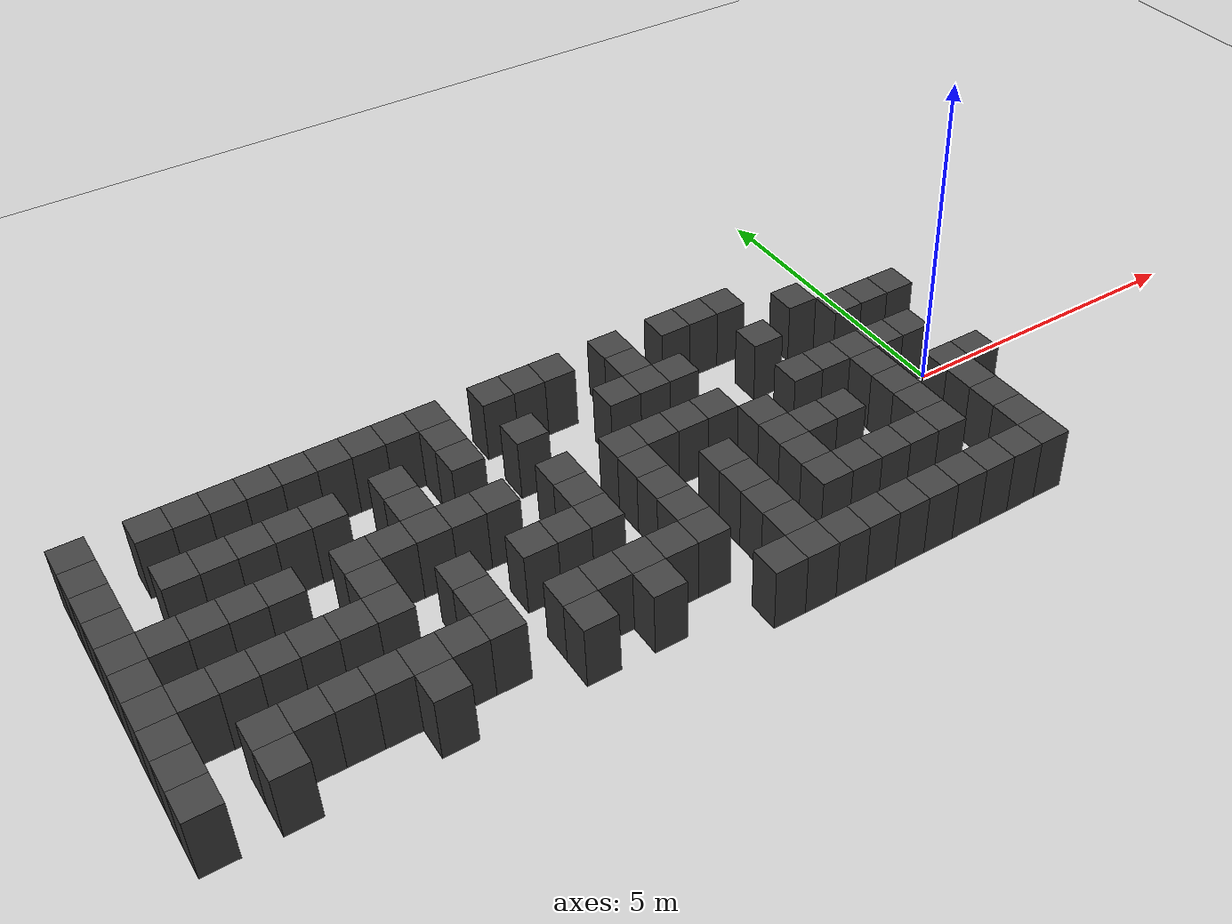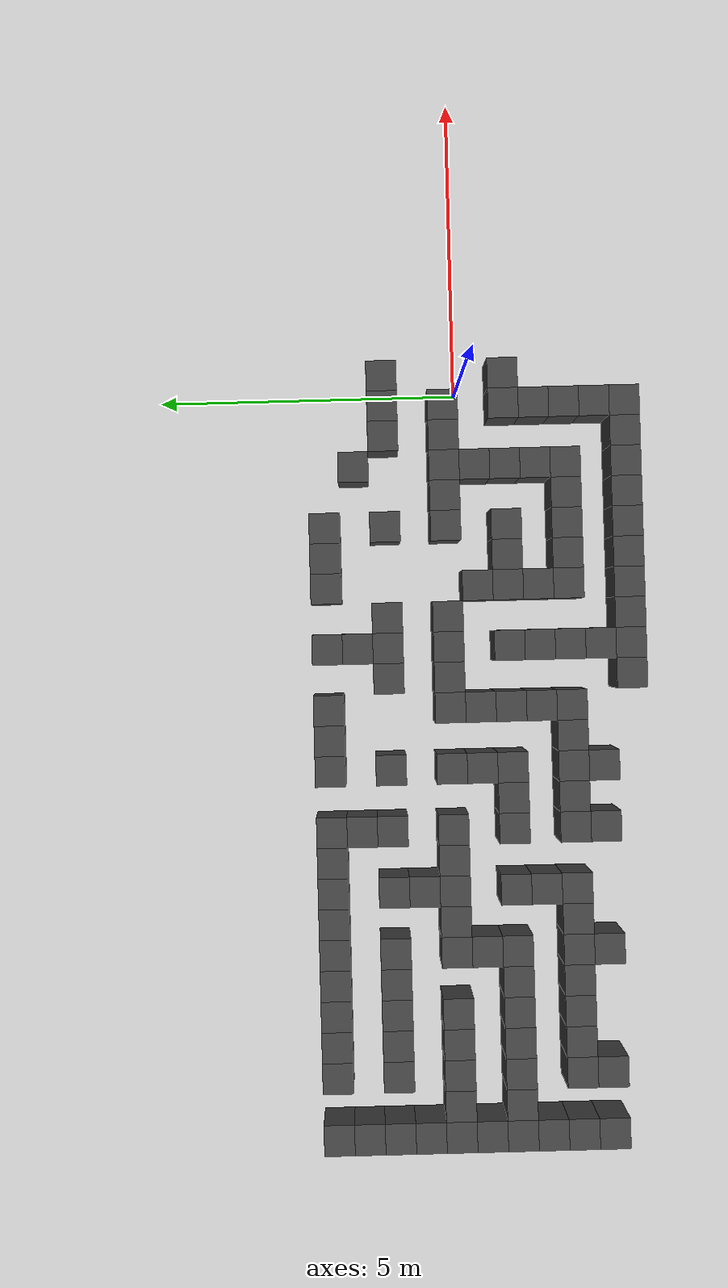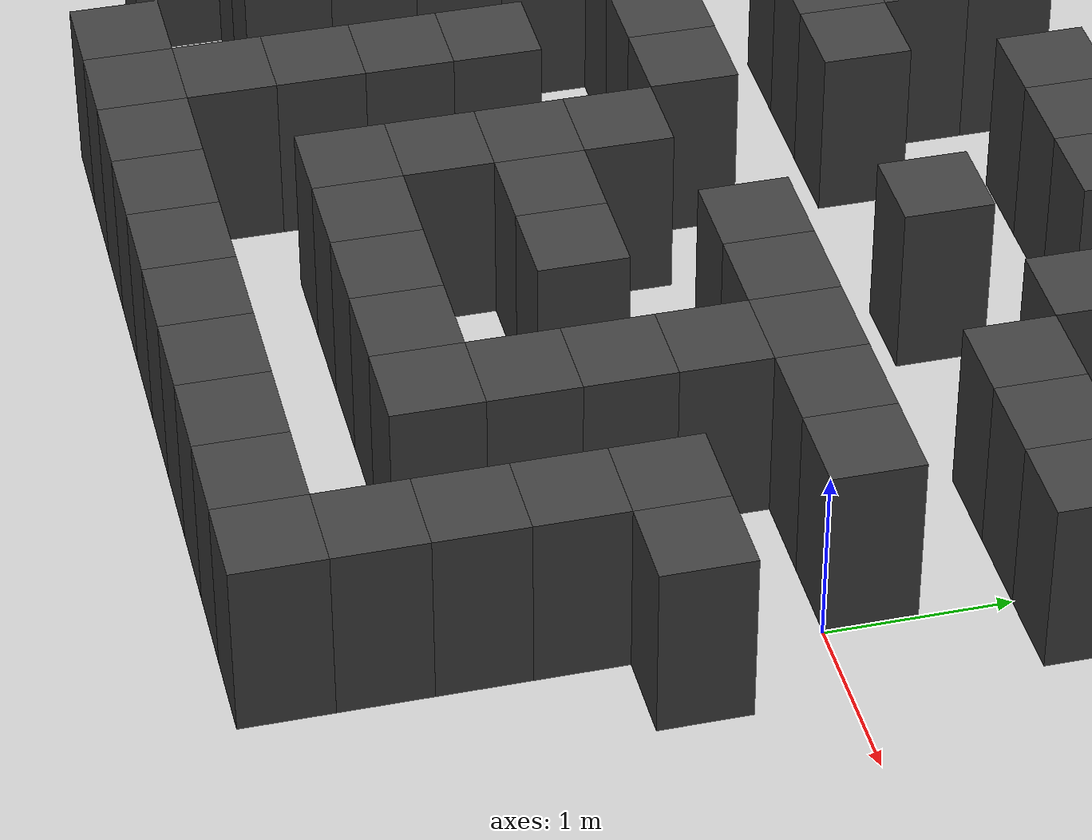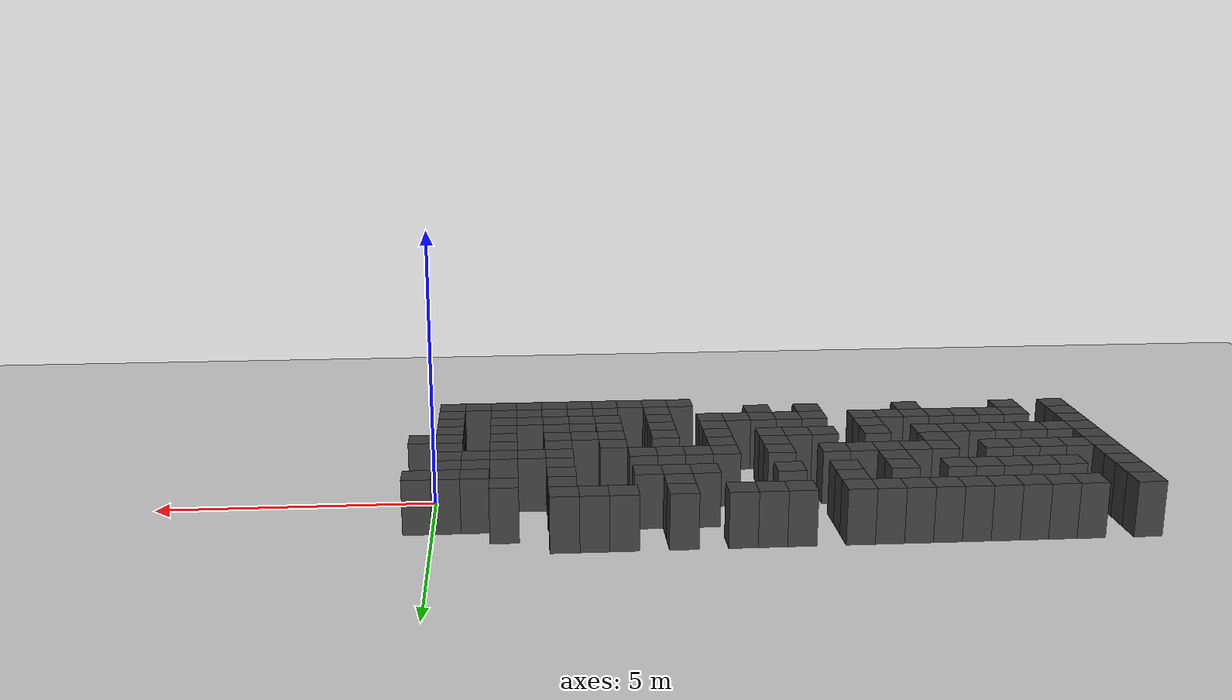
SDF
<sdf version="1.7">
 <world name="map_17663">
  <model name="ground_plane">
   <static>true</static>
   <link name="link">
    <collision name="collision">
     <geometry><plane><normal>0 0 1</normal><size>200 200</size></plane></geometry>
    </collision>
    <visual name="visual">
     <geometry><plane><normal>0 0 1</normal><size>200 200</size></plane></geometry>
     <material><ambient>0.8 0.8 0.8 1</ambient><diffuse>0.8 0.8 0.8 1</diffuse></material>
    </visual>
   </link>
  </model>
  <model name="maze_environment">
   <static>true</static>
   <link name="wall_496">
    <pose>-12.250 2.250 0.500 0 0 0</pose>
    <collision name="col"><geometry><box><size>0.5 0.5 1.0</size></box></geometry></collision>
    <visual name="vis">
     <geometry><box><size>0.5 0.5 1.0</size></box></geometry>
     <material><ambient>0.15 0.15 0.15 1</ambient><diffuse>0.25 0.25 0.25 1</diffuse></material>
    </visual>
   </link>
   <link name="wall_497">
    <pose>-11.250 2.250 0.500 0 0 0</pose>
    <collision name="col"><geometry><box><size>0.5 0.5 1.0</size></box></geometry></collision>
    <visual name="vis">
     <geometry><box><size>0.5 0.5 1.0</size></box></geometry>
     <material><ambient>0.15 0.15 0.15 1</ambient><diffuse>0.25 0.25 0.25 1</diffuse></material>
    </visual>
   </link>
   <link name="wall_498">
    <pose>-10.750 2.250 0.500 0 0 0</pose>
    <collision name="col"><geometry><box><size>0.5 0.5 1.0</size></box></geometry></collision>
    <visual name="vis">
     <geometry><box><size>0.5 0.5 1.0</size></box></geometry>
     <material><ambient>0.15 0.15 0.15 1</ambient><diffuse>0.25 0.25 0.25 1</diffuse></material>
    </visual>
   </link>
   <link name="wall_499">
    <pose>-10.250 2.250 0.500 0 0 0</pose>
    <collision name="col"><geometry><box><size>0.5 0.5 1.0</size></box></geometry></collision>
    <visual name="vis">
     <geometry><box><size>0.5 0.5 1.0</size></box></geometry>
     <material><ambient>0.15 0.15 0.15 1</ambient><diffuse>0.25 0.25 0.25 1</diffuse></material>
    </visual>
   </link>
   <link name="wall_500">
    <pose>-9.750 2.250 0.500 0 0 0</pose>
    <collision name="col"><geometry><box><size>0.5 0.5 1.0</size></box></geometry></collision>
    <visual name="vis">
     <geometry><box><size>0.5 0.5 1.0</size></box></geometry>
     <material><ambient>0.15 0.15 0.15 1</ambient><diffuse>0.25 0.25 0.25 1</diffuse></material>
    </visual>
   </link>
   <link name="wall_501">
    <pose>-9.250 2.250 0.500 0 0 0</pose>
    <collision name="col"><geometry><box><size>0.5 0.5 1.0</size></box></geometry></collision>
    <visual name="vis">
     <geometry><box><size>0.5 0.5 1.0</size></box></geometry>
     <material><ambient>0.15 0.15 0.15 1</ambient><diffuse>0.25 0.25 0.25 1</diffuse></material>
    </visual>
   </link>
   <link name="wall_502">
    <pose>-8.750 2.250 0.500 0 0 0</pose>
    <collision name="col"><geometry><box><size>0.5 0.5 1.0</size></box></geometry></collision>
    <visual name="vis">
     <geometry><box><size>0.5 0.5 1.0</size></box></geometry>
     <material><ambient>0.15 0.15 0.15 1</ambient><diffuse>0.25 0.25 0.25 1</diffuse></material>
    </visual>
   </link>
   <link name="wall_503">
    <pose>-8.250 2.250 0.500 0 0 0</pose>
    <collision name="col"><geometry><box><size>0.5 0.5 1.0</size></box></geometry></collision>
    <visual name="vis">
     <geometry><box><size>0.5 0.5 1.0</size></box></geometry>
     <material><ambient>0.15 0.15 0.15 1</ambient><diffuse>0.25 0.25 0.25 1</diffuse></material>
    </visual>
   </link>
   <link name="wall_504">
    <pose>-7.750 2.250 0.500 0 0 0</pose>
    <collision name="col"><geometry><box><size>0.5 0.5 1.0</size></box></geometry></collision>
    <visual name="vis">
     <geometry><box><size>0.5 0.5 1.0</size></box></geometry>
     <material><ambient>0.15 0.15 0.15 1</ambient><diffuse>0.25 0.25 0.25 1</diffuse></material>
    </visual>
   </link>
   <link name="wall_505">
    <pose>-7.250 2.250 0.500 0 0 0</pose>
    <collision name="col"><geometry><box><size>0.5 0.5 1.0</size></box></geometry></collision>
    <visual name="vis">
     <geometry><box><size>0.5 0.5 1.0</size></box></geometry>
     <material><ambient>0.15 0.15 0.15 1</ambient><diffuse>0.25 0.25 0.25 1</diffuse></material>
    </visual>
   </link>
   <link name="wall_506">
    <pose>-6.250 2.250 0.500 0 0 0</pose>
    <collision name="col"><geometry><box><size>0.5 0.5 1.0</size></box></geometry></collision>
    <visual name="vis">
     <geometry><box><size>0.5 0.5 1.0</size></box></geometry>
     <material><ambient>0.15 0.15 0.15 1</ambient><diffuse>0.25 0.25 0.25 1</diffuse></material>
    </visual>
   </link>
   <link name="wall_507">
    <pose>-5.750 2.250 0.500 0 0 0</pose>
    <collision name="col"><geometry><box><size>0.5 0.5 1.0</size></box></geometry></collision>
    <visual name="vis">
     <geometry><box><size>0.5 0.5 1.0</size></box></geometry>
     <material><ambient>0.15 0.15 0.15 1</ambient><diffuse>0.25 0.25 0.25 1</diffuse></material>
    </visual>
   </link>
   <link name="wall_508">
    <pose>-5.250 2.250 0.500 0 0 0</pose>
    <collision name="col"><geometry><box><size>0.5 0.5 1.0</size></box></geometry></collision>
    <visual name="vis">
     <geometry><box><size>0.5 0.5 1.0</size></box></geometry>
     <material><ambient>0.15 0.15 0.15 1</ambient><diffuse>0.25 0.25 0.25 1</diffuse></material>
    </visual>
   </link>
   <link name="wall_509">
    <pose>-4.250 2.250 0.500 0 0 0</pose>
    <collision name="col"><geometry><box><size>0.5 0.5 1.0</size></box></geometry></collision>
    <visual name="vis">
     <geometry><box><size>0.5 0.5 1.0</size></box></geometry>
     <material><ambient>0.15 0.15 0.15 1</ambient><diffuse>0.25 0.25 0.25 1</diffuse></material>
    </visual>
   </link>
   <link name="wall_510">
    <pose>-3.250 2.250 0.500 0 0 0</pose>
    <collision name="col"><geometry><box><size>0.5 0.5 1.0</size></box></geometry></collision>
    <visual name="vis">
     <geometry><box><size>0.5 0.5 1.0</size></box></geometry>
     <material><ambient>0.15 0.15 0.15 1</ambient><diffuse>0.25 0.25 0.25 1</diffuse></material>
    </visual>
   </link>
   <link name="wall_511">
    <pose>-2.750 2.250 0.500 0 0 0</pose>
    <collision name="col"><geometry><box><size>0.5 0.5 1.0</size></box></geometry></collision>
    <visual name="vis">
     <geometry><box><size>0.5 0.5 1.0</size></box></geometry>
     <material><ambient>0.15 0.15 0.15 1</ambient><diffuse>0.25 0.25 0.25 1</diffuse></material>
    </visual>
   </link>
   <link name="wall_512">
    <pose>-2.250 2.250 0.500 0 0 0</pose>
    <collision name="col"><geometry><box><size>0.5 0.5 1.0</size></box></geometry></collision>
    <visual name="vis">
     <geometry><box><size>0.5 0.5 1.0</size></box></geometry>
     <material><ambient>0.15 0.15 0.15 1</ambient><diffuse>0.25 0.25 0.25 1</diffuse></material>
    </visual>
   </link>
   <link name="wall_533">
    <pose>-12.250 1.750 0.500 0 0 0</pose>
    <collision name="col"><geometry><box><size>0.5 0.5 1.0</size></box></geometry></collision>
    <visual name="vis">
     <geometry><box><size>0.5 0.5 1.0</size></box></geometry>
     <material><ambient>0.15 0.15 0.15 1</ambient><diffuse>0.25 0.25 0.25 1</diffuse></material>
    </visual>
   </link>
   <link name="wall_534">
    <pose>-7.250 1.750 0.500 0 0 0</pose>
    <collision name="col"><geometry><box><size>0.5 0.5 1.0</size></box></geometry></collision>
    <visual name="vis">
     <geometry><box><size>0.5 0.5 1.0</size></box></geometry>
     <material><ambient>0.15 0.15 0.15 1</ambient><diffuse>0.25 0.25 0.25 1</diffuse></material>
    </visual>
   </link>
   <link name="wall_535">
    <pose>-4.250 1.750 0.500 0 0 0</pose>
    <collision name="col"><geometry><box><size>0.5 0.5 1.0</size></box></geometry></collision>
    <visual name="vis">
     <geometry><box><size>0.5 0.5 1.0</size></box></geometry>
     <material><ambient>0.15 0.15 0.15 1</ambient><diffuse>0.25 0.25 0.25 1</diffuse></material>
    </visual>
   </link>
   <link name="wall_536">
    <pose>-1.250 1.750 0.500 0 0 0</pose>
    <collision name="col"><geometry><box><size>0.5 0.5 1.0</size></box></geometry></collision>
    <visual name="vis">
     <geometry><box><size>0.5 0.5 1.0</size></box></geometry>
     <material><ambient>0.15 0.15 0.15 1</ambient><diffuse>0.25 0.25 0.25 1</diffuse></material>
    </visual>
   </link>
   <link name="wall_543">
    <pose>-12.250 1.250 0.500 0 0 0</pose>
    <collision name="col"><geometry><box><size>0.5 0.5 1.0</size></box></geometry></collision>
    <visual name="vis">
     <geometry><box><size>0.5 0.5 1.0</size></box></geometry>
     <material><ambient>0.15 0.15 0.15 1</ambient><diffuse>0.25 0.25 0.25 1</diffuse></material>
    </visual>
   </link>
   <link name="wall_544">
    <pose>-11.250 1.250 0.500 0 0 0</pose>
    <collision name="col"><geometry><box><size>0.5 0.5 1.0</size></box></geometry></collision>
    <visual name="vis">
     <geometry><box><size>0.5 0.5 1.0</size></box></geometry>
     <material><ambient>0.15 0.15 0.15 1</ambient><diffuse>0.25 0.25 0.25 1</diffuse></material>
    </visual>
   </link>
   <link name="wall_545">
    <pose>-10.750 1.250 0.500 0 0 0</pose>
    <collision name="col"><geometry><box><size>0.5 0.5 1.0</size></box></geometry></collision>
    <visual name="vis">
     <geometry><box><size>0.5 0.5 1.0</size></box></geometry>
     <material><ambient>0.15 0.15 0.15 1</ambient><diffuse>0.25 0.25 0.25 1</diffuse></material>
    </visual>
   </link>
   <link name="wall_546">
    <pose>-10.250 1.250 0.500 0 0 0</pose>
    <collision name="col"><geometry><box><size>0.5 0.5 1.0</size></box></geometry></collision>
    <visual name="vis">
     <geometry><box><size>0.5 0.5 1.0</size></box></geometry>
     <material><ambient>0.15 0.15 0.15 1</ambient><diffuse>0.25 0.25 0.25 1</diffuse></material>
    </visual>
   </link>
   <link name="wall_547">
    <pose>-9.750 1.250 0.500 0 0 0</pose>
    <collision name="col"><geometry><box><size>0.5 0.5 1.0</size></box></geometry></collision>
    <visual name="vis">
     <geometry><box><size>0.5 0.5 1.0</size></box></geometry>
     <material><ambient>0.15 0.15 0.15 1</ambient><diffuse>0.25 0.25 0.25 1</diffuse></material>
    </visual>
   </link>
   <link name="wall_548">
    <pose>-9.250 1.250 0.500 0 0 0</pose>
    <collision name="col"><geometry><box><size>0.5 0.5 1.0</size></box></geometry></collision>
    <visual name="vis">
     <geometry><box><size>0.5 0.5 1.0</size></box></geometry>
     <material><ambient>0.15 0.15 0.15 1</ambient><diffuse>0.25 0.25 0.25 1</diffuse></material>
    </visual>
   </link>
   <link name="wall_549">
    <pose>-8.250 1.250 0.500 0 0 0</pose>
    <collision name="col"><geometry><box><size>0.5 0.5 1.0</size></box></geometry></collision>
    <visual name="vis">
     <geometry><box><size>0.5 0.5 1.0</size></box></geometry>
     <material><ambient>0.15 0.15 0.15 1</ambient><diffuse>0.25 0.25 0.25 1</diffuse></material>
    </visual>
   </link>
   <link name="wall_550">
    <pose>-7.250 1.250 0.500 0 0 0</pose>
    <collision name="col"><geometry><box><size>0.5 0.5 1.0</size></box></geometry></collision>
    <visual name="vis">
     <geometry><box><size>0.5 0.5 1.0</size></box></geometry>
     <material><ambient>0.15 0.15 0.15 1</ambient><diffuse>0.25 0.25 0.25 1</diffuse></material>
    </visual>
   </link>
   <link name="wall_551">
    <pose>-6.250 1.250 0.500 0 0 0</pose>
    <collision name="col"><geometry><box><size>0.5 0.5 1.0</size></box></geometry></collision>
    <visual name="vis">
     <geometry><box><size>0.5 0.5 1.0</size></box></geometry>
     <material><ambient>0.15 0.15 0.15 1</ambient><diffuse>0.25 0.25 0.25 1</diffuse></material>
    </visual>
   </link>
   <link name="wall_552">
    <pose>-4.750 1.250 0.500 0 0 0</pose>
    <collision name="col"><geometry><box><size>0.5 0.5 1.0</size></box></geometry></collision>
    <visual name="vis">
     <geometry><box><size>0.5 0.5 1.0</size></box></geometry>
     <material><ambient>0.15 0.15 0.15 1</ambient><diffuse>0.25 0.25 0.25 1</diffuse></material>
    </visual>
   </link>
   <link name="wall_553">
    <pose>-4.250 1.250 0.500 0 0 0</pose>
    <collision name="col"><geometry><box><size>0.5 0.5 1.0</size></box></geometry></collision>
    <visual name="vis">
     <geometry><box><size>0.5 0.5 1.0</size></box></geometry>
     <material><ambient>0.15 0.15 0.15 1</ambient><diffuse>0.25 0.25 0.25 1</diffuse></material>
    </visual>
   </link>
   <link name="wall_554">
    <pose>-3.750 1.250 0.500 0 0 0</pose>
    <collision name="col"><geometry><box><size>0.5 0.5 1.0</size></box></geometry></collision>
    <visual name="vis">
     <geometry><box><size>0.5 0.5 1.0</size></box></geometry>
     <material><ambient>0.15 0.15 0.15 1</ambient><diffuse>0.25 0.25 0.25 1</diffuse></material>
    </visual>
   </link>
   <link name="wall_555">
    <pose>-2.250 1.250 0.500 0 0 0</pose>
    <collision name="col"><geometry><box><size>0.5 0.5 1.0</size></box></geometry></collision>
    <visual name="vis">
     <geometry><box><size>0.5 0.5 1.0</size></box></geometry>
     <material><ambient>0.15 0.15 0.15 1</ambient><diffuse>0.25 0.25 0.25 1</diffuse></material>
    </visual>
   </link>
   <link name="wall_556">
    <pose>-0.750 1.250 0.500 0 0 0</pose>
    <collision name="col"><geometry><box><size>0.5 0.5 1.0</size></box></geometry></collision>
    <visual name="vis">
     <geometry><box><size>0.5 0.5 1.0</size></box></geometry>
     <material><ambient>0.15 0.15 0.15 1</ambient><diffuse>0.25 0.25 0.25 1</diffuse></material>
    </visual>
   </link>
   <link name="wall_557">
    <pose>-0.250 1.250 0.500 0 0 0</pose>
    <collision name="col"><geometry><box><size>0.5 0.5 1.0</size></box></geometry></collision>
    <visual name="vis">
     <geometry><box><size>0.5 0.5 1.0</size></box></geometry>
     <material><ambient>0.15 0.15 0.15 1</ambient><diffuse>0.25 0.25 0.25 1</diffuse></material>
    </visual>
   </link>
   <link name="wall_558">
    <pose>0.250 1.250 0.500 0 0 0</pose>
    <collision name="col"><geometry><box><size>0.5 0.5 1.0</size></box></geometry></collision>
    <visual name="vis">
     <geometry><box><size>0.5 0.5 1.0</size></box></geometry>
     <material><ambient>0.15 0.15 0.15 1</ambient><diffuse>0.25 0.25 0.25 1</diffuse></material>
    </visual>
   </link>
   <link name="wall_577">
    <pose>-12.250 0.750 0.500 0 0 0</pose>
    <collision name="col"><geometry><box><size>0.5 0.5 1.0</size></box></geometry></collision>
    <visual name="vis">
     <geometry><box><size>0.5 0.5 1.0</size></box></geometry>
     <material><ambient>0.15 0.15 0.15 1</ambient><diffuse>0.25 0.25 0.25 1</diffuse></material>
    </visual>
   </link>
   <link name="wall_578">
    <pose>-8.250 0.750 0.500 0 0 0</pose>
    <collision name="col"><geometry><box><size>0.5 0.5 1.0</size></box></geometry></collision>
    <visual name="vis">
     <geometry><box><size>0.5 0.5 1.0</size></box></geometry>
     <material><ambient>0.15 0.15 0.15 1</ambient><diffuse>0.25 0.25 0.25 1</diffuse></material>
    </visual>
   </link>
   <link name="wall_587">
    <pose>-12.250 0.250 0.500 0 0 0</pose>
    <collision name="col"><geometry><box><size>0.5 0.5 1.0</size></box></geometry></collision>
    <visual name="vis">
     <geometry><box><size>0.5 0.5 1.0</size></box></geometry>
     <material><ambient>0.15 0.15 0.15 1</ambient><diffuse>0.25 0.25 0.25 1</diffuse></material>
    </visual>
   </link>
   <link name="wall_588">
    <pose>-11.750 0.250 0.500 0 0 0</pose>
    <collision name="col"><geometry><box><size>0.5 0.5 1.0</size></box></geometry></collision>
    <visual name="vis">
     <geometry><box><size>0.5 0.5 1.0</size></box></geometry>
     <material><ambient>0.15 0.15 0.15 1</ambient><diffuse>0.25 0.25 0.25 1</diffuse></material>
    </visual>
   </link>
   <link name="wall_589">
    <pose>-11.250 0.250 0.500 0 0 0</pose>
    <collision name="col"><geometry><box><size>0.5 0.5 1.0</size></box></geometry></collision>
    <visual name="vis">
     <geometry><box><size>0.5 0.5 1.0</size></box></geometry>
     <material><ambient>0.15 0.15 0.15 1</ambient><diffuse>0.25 0.25 0.25 1</diffuse></material>
    </visual>
   </link>
   <link name="wall_590">
    <pose>-10.750 0.250 0.500 0 0 0</pose>
    <collision name="col"><geometry><box><size>0.5 0.5 1.0</size></box></geometry></collision>
    <visual name="vis">
     <geometry><box><size>0.5 0.5 1.0</size></box></geometry>
     <material><ambient>0.15 0.15 0.15 1</ambient><diffuse>0.25 0.25 0.25 1</diffuse></material>
    </visual>
   </link>
   <link name="wall_591">
    <pose>-10.250 0.250 0.500 0 0 0</pose>
    <collision name="col"><geometry><box><size>0.5 0.5 1.0</size></box></geometry></collision>
    <visual name="vis">
     <geometry><box><size>0.5 0.5 1.0</size></box></geometry>
     <material><ambient>0.15 0.15 0.15 1</ambient><diffuse>0.25 0.25 0.25 1</diffuse></material>
    </visual>
   </link>
   <link name="wall_592">
    <pose>-9.250 0.250 0.500 0 0 0</pose>
    <collision name="col"><geometry><box><size>0.5 0.5 1.0</size></box></geometry></collision>
    <visual name="vis">
     <geometry><box><size>0.5 0.5 1.0</size></box></geometry>
     <material><ambient>0.15 0.15 0.15 1</ambient><diffuse>0.25 0.25 0.25 1</diffuse></material>
    </visual>
   </link>
   <link name="wall_593">
    <pose>-8.750 0.250 0.500 0 0 0</pose>
    <collision name="col"><geometry><box><size>0.5 0.5 1.0</size></box></geometry></collision>
    <visual name="vis">
     <geometry><box><size>0.5 0.5 1.0</size></box></geometry>
     <material><ambient>0.15 0.15 0.15 1</ambient><diffuse>0.25 0.25 0.25 1</diffuse></material>
    </visual>
   </link>
   <link name="wall_594">
    <pose>-8.250 0.250 0.500 0 0 0</pose>
    <collision name="col"><geometry><box><size>0.5 0.5 1.0</size></box></geometry></collision>
    <visual name="vis">
     <geometry><box><size>0.5 0.5 1.0</size></box></geometry>
     <material><ambient>0.15 0.15 0.15 1</ambient><diffuse>0.25 0.25 0.25 1</diffuse></material>
    </visual>
   </link>
   <link name="wall_595">
    <pose>-7.750 0.250 0.500 0 0 0</pose>
    <collision name="col"><geometry><box><size>0.5 0.5 1.0</size></box></geometry></collision>
    <visual name="vis">
     <geometry><box><size>0.5 0.5 1.0</size></box></geometry>
     <material><ambient>0.15 0.15 0.15 1</ambient><diffuse>0.25 0.25 0.25 1</diffuse></material>
    </visual>
   </link>
   <link name="wall_596">
    <pose>-7.250 0.250 0.500 0 0 0</pose>
    <collision name="col"><geometry><box><size>0.5 0.5 1.0</size></box></geometry></collision>
    <visual name="vis">
     <geometry><box><size>0.5 0.5 1.0</size></box></geometry>
     <material><ambient>0.15 0.15 0.15 1</ambient><diffuse>0.25 0.25 0.25 1</diffuse></material>
    </visual>
   </link>
   <link name="wall_597">
    <pose>-6.250 0.250 0.500 0 0 0</pose>
    <collision name="col"><geometry><box><size>0.5 0.5 1.0</size></box></geometry></collision>
    <visual name="vis">
     <geometry><box><size>0.5 0.5 1.0</size></box></geometry>
     <material><ambient>0.15 0.15 0.15 1</ambient><diffuse>0.25 0.25 0.25 1</diffuse></material>
    </visual>
   </link>
   <link name="wall_598">
    <pose>-5.250 0.250 0.500 0 0 0</pose>
    <collision name="col"><geometry><box><size>0.5 0.5 1.0</size></box></geometry></collision>
    <visual name="vis">
     <geometry><box><size>0.5 0.5 1.0</size></box></geometry>
     <material><ambient>0.15 0.15 0.15 1</ambient><diffuse>0.25 0.25 0.25 1</diffuse></material>
    </visual>
   </link>
   <link name="wall_599">
    <pose>-4.750 0.250 0.500 0 0 0</pose>
    <collision name="col"><geometry><box><size>0.5 0.5 1.0</size></box></geometry></collision>
    <visual name="vis">
     <geometry><box><size>0.5 0.5 1.0</size></box></geometry>
     <material><ambient>0.15 0.15 0.15 1</ambient><diffuse>0.25 0.25 0.25 1</diffuse></material>
    </visual>
   </link>
   <link name="wall_600">
    <pose>-4.250 0.250 0.500 0 0 0</pose>
    <collision name="col"><geometry><box><size>0.5 0.5 1.0</size></box></geometry></collision>
    <visual name="vis">
     <geometry><box><size>0.5 0.5 1.0</size></box></geometry>
     <material><ambient>0.15 0.15 0.15 1</ambient><diffuse>0.25 0.25 0.25 1</diffuse></material>
    </visual>
   </link>
   <link name="wall_601">
    <pose>-3.750 0.250 0.500 0 0 0</pose>
    <collision name="col"><geometry><box><size>0.5 0.5 1.0</size></box></geometry></collision>
    <visual name="vis">
     <geometry><box><size>0.5 0.5 1.0</size></box></geometry>
     <material><ambient>0.15 0.15 0.15 1</ambient><diffuse>0.25 0.25 0.25 1</diffuse></material>
    </visual>
   </link>
   <link name="wall_602">
    <pose>-2.250 0.250 0.500 0 0 0</pose>
    <collision name="col"><geometry><box><size>0.5 0.5 1.0</size></box></geometry></collision>
    <visual name="vis">
     <geometry><box><size>0.5 0.5 1.0</size></box></geometry>
     <material><ambient>0.15 0.15 0.15 1</ambient><diffuse>0.25 0.25 0.25 1</diffuse></material>
    </visual>
   </link>
   <link name="wall_603">
    <pose>-1.750 0.250 0.500 0 0 0</pose>
    <collision name="col"><geometry><box><size>0.5 0.5 1.0</size></box></geometry></collision>
    <visual name="vis">
     <geometry><box><size>0.5 0.5 1.0</size></box></geometry>
     <material><ambient>0.15 0.15 0.15 1</ambient><diffuse>0.25 0.25 0.25 1</diffuse></material>
    </visual>
   </link>
   <link name="wall_604">
    <pose>-1.250 0.250 0.500 0 0 0</pose>
    <collision name="col"><geometry><box><size>0.5 0.5 1.0</size></box></geometry></collision>
    <visual name="vis">
     <geometry><box><size>0.5 0.5 1.0</size></box></geometry>
     <material><ambient>0.15 0.15 0.15 1</ambient><diffuse>0.25 0.25 0.25 1</diffuse></material>
    </visual>
   </link>
   <link name="wall_605">
    <pose>-0.750 0.250 0.500 0 0 0</pose>
    <collision name="col"><geometry><box><size>0.5 0.5 1.0</size></box></geometry></collision>
    <visual name="vis">
     <geometry><box><size>0.5 0.5 1.0</size></box></geometry>
     <material><ambient>0.15 0.15 0.15 1</ambient><diffuse>0.25 0.25 0.25 1</diffuse></material>
    </visual>
   </link>
   <link name="wall_606">
    <pose>-0.250 0.250 0.500 0 0 0</pose>
    <collision name="col"><geometry><box><size>0.5 0.5 1.0</size></box></geometry></collision>
    <visual name="vis">
     <geometry><box><size>0.5 0.5 1.0</size></box></geometry>
     <material><ambient>0.15 0.15 0.15 1</ambient><diffuse>0.25 0.25 0.25 1</diffuse></material>
    </visual>
   </link>
   <link name="wall_624">
    <pose>-12.250 -0.250 0.500 0 0 0</pose>
    <collision name="col"><geometry><box><size>0.5 0.5 1.0</size></box></geometry></collision>
    <visual name="vis">
     <geometry><box><size>0.5 0.5 1.0</size></box></geometry>
     <material><ambient>0.15 0.15 0.15 1</ambient><diffuse>0.25 0.25 0.25 1</diffuse></material>
    </visual>
   </link>
   <link name="wall_625">
    <pose>-9.250 -0.250 0.500 0 0 0</pose>
    <collision name="col"><geometry><box><size>0.5 0.5 1.0</size></box></geometry></collision>
    <visual name="vis">
     <geometry><box><size>0.5 0.5 1.0</size></box></geometry>
     <material><ambient>0.15 0.15 0.15 1</ambient><diffuse>0.25 0.25 0.25 1</diffuse></material>
    </visual>
   </link>
   <link name="wall_626">
    <pose>-6.250 -0.250 0.500 0 0 0</pose>
    <collision name="col"><geometry><box><size>0.5 0.5 1.0</size></box></geometry></collision>
    <visual name="vis">
     <geometry><box><size>0.5 0.5 1.0</size></box></geometry>
     <material><ambient>0.15 0.15 0.15 1</ambient><diffuse>0.25 0.25 0.25 1</diffuse></material>
    </visual>
   </link>
   <link name="wall_627">
    <pose>-5.250 -0.250 0.500 0 0 0</pose>
    <collision name="col"><geometry><box><size>0.5 0.5 1.0</size></box></geometry></collision>
    <visual name="vis">
     <geometry><box><size>0.5 0.5 1.0</size></box></geometry>
     <material><ambient>0.15 0.15 0.15 1</ambient><diffuse>0.25 0.25 0.25 1</diffuse></material>
    </visual>
   </link>
   <link name="wall_628">
    <pose>-3.250 -0.250 0.500 0 0 0</pose>
    <collision name="col"><geometry><box><size>0.5 0.5 1.0</size></box></geometry></collision>
    <visual name="vis">
     <geometry><box><size>0.5 0.5 1.0</size></box></geometry>
     <material><ambient>0.15 0.15 0.15 1</ambient><diffuse>0.25 0.25 0.25 1</diffuse></material>
    </visual>
   </link>
   <link name="wall_629">
    <pose>-1.250 -0.250 0.500 0 0 0</pose>
    <collision name="col"><geometry><box><size>0.5 0.5 1.0</size></box></geometry></collision>
    <visual name="vis">
     <geometry><box><size>0.5 0.5 1.0</size></box></geometry>
     <material><ambient>0.15 0.15 0.15 1</ambient><diffuse>0.25 0.25 0.25 1</diffuse></material>
    </visual>
   </link>
   <link name="wall_640">
    <pose>-12.250 -0.750 0.500 0 0 0</pose>
    <collision name="col"><geometry><box><size>0.5 0.5 1.0</size></box></geometry></collision>
    <visual name="vis">
     <geometry><box><size>0.5 0.5 1.0</size></box></geometry>
     <material><ambient>0.15 0.15 0.15 1</ambient><diffuse>0.25 0.25 0.25 1</diffuse></material>
    </visual>
   </link>
   <link name="wall_641">
    <pose>-11.750 -0.750 0.500 0 0 0</pose>
    <collision name="col"><geometry><box><size>0.5 0.5 1.0</size></box></geometry></collision>
    <visual name="vis">
     <geometry><box><size>0.5 0.5 1.0</size></box></geometry>
     <material><ambient>0.15 0.15 0.15 1</ambient><diffuse>0.25 0.25 0.25 1</diffuse></material>
    </visual>
   </link>
   <link name="wall_642">
    <pose>-11.250 -0.750 0.500 0 0 0</pose>
    <collision name="col"><geometry><box><size>0.5 0.5 1.0</size></box></geometry></collision>
    <visual name="vis">
     <geometry><box><size>0.5 0.5 1.0</size></box></geometry>
     <material><ambient>0.15 0.15 0.15 1</ambient><diffuse>0.25 0.25 0.25 1</diffuse></material>
    </visual>
   </link>
   <link name="wall_643">
    <pose>-10.750 -0.750 0.500 0 0 0</pose>
    <collision name="col"><geometry><box><size>0.5 0.5 1.0</size></box></geometry></collision>
    <visual name="vis">
     <geometry><box><size>0.5 0.5 1.0</size></box></geometry>
     <material><ambient>0.15 0.15 0.15 1</ambient><diffuse>0.25 0.25 0.25 1</diffuse></material>
    </visual>
   </link>
   <link name="wall_644">
    <pose>-10.250 -0.750 0.500 0 0 0</pose>
    <collision name="col"><geometry><box><size>0.5 0.5 1.0</size></box></geometry></collision>
    <visual name="vis">
     <geometry><box><size>0.5 0.5 1.0</size></box></geometry>
     <material><ambient>0.15 0.15 0.15 1</ambient><diffuse>0.25 0.25 0.25 1</diffuse></material>
    </visual>
   </link>
   <link name="wall_645">
    <pose>-9.750 -0.750 0.500 0 0 0</pose>
    <collision name="col"><geometry><box><size>0.5 0.5 1.0</size></box></geometry></collision>
    <visual name="vis">
     <geometry><box><size>0.5 0.5 1.0</size></box></geometry>
     <material><ambient>0.15 0.15 0.15 1</ambient><diffuse>0.25 0.25 0.25 1</diffuse></material>
    </visual>
   </link>
   <link name="wall_646">
    <pose>-9.250 -0.750 0.500 0 0 0</pose>
    <collision name="col"><geometry><box><size>0.5 0.5 1.0</size></box></geometry></collision>
    <visual name="vis">
     <geometry><box><size>0.5 0.5 1.0</size></box></geometry>
     <material><ambient>0.15 0.15 0.15 1</ambient><diffuse>0.25 0.25 0.25 1</diffuse></material>
    </visual>
   </link>
   <link name="wall_647">
    <pose>-8.250 -0.750 0.500 0 0 0</pose>
    <collision name="col"><geometry><box><size>0.5 0.5 1.0</size></box></geometry></collision>
    <visual name="vis">
     <geometry><box><size>0.5 0.5 1.0</size></box></geometry>
     <material><ambient>0.15 0.15 0.15 1</ambient><diffuse>0.25 0.25 0.25 1</diffuse></material>
    </visual>
   </link>
   <link name="wall_648">
    <pose>-7.250 -0.750 0.500 0 0 0</pose>
    <collision name="col"><geometry><box><size>0.5 0.5 1.0</size></box></geometry></collision>
    <visual name="vis">
     <geometry><box><size>0.5 0.5 1.0</size></box></geometry>
     <material><ambient>0.15 0.15 0.15 1</ambient><diffuse>0.25 0.25 0.25 1</diffuse></material>
    </visual>
   </link>
   <link name="wall_649">
    <pose>-6.750 -0.750 0.500 0 0 0</pose>
    <collision name="col"><geometry><box><size>0.5 0.5 1.0</size></box></geometry></collision>
    <visual name="vis">
     <geometry><box><size>0.5 0.5 1.0</size></box></geometry>
     <material><ambient>0.15 0.15 0.15 1</ambient><diffuse>0.25 0.25 0.25 1</diffuse></material>
    </visual>
   </link>
   <link name="wall_650">
    <pose>-6.250 -0.750 0.500 0 0 0</pose>
    <collision name="col"><geometry><box><size>0.5 0.5 1.0</size></box></geometry></collision>
    <visual name="vis">
     <geometry><box><size>0.5 0.5 1.0</size></box></geometry>
     <material><ambient>0.15 0.15 0.15 1</ambient><diffuse>0.25 0.25 0.25 1</diffuse></material>
    </visual>
   </link>
   <link name="wall_651">
    <pose>-5.250 -0.750 0.500 0 0 0</pose>
    <collision name="col"><geometry><box><size>0.5 0.5 1.0</size></box></geometry></collision>
    <visual name="vis">
     <geometry><box><size>0.5 0.5 1.0</size></box></geometry>
     <material><ambient>0.15 0.15 0.15 1</ambient><diffuse>0.25 0.25 0.25 1</diffuse></material>
    </visual>
   </link>
   <link name="wall_652">
    <pose>-4.250 -0.750 0.500 0 0 0</pose>
    <collision name="col"><geometry><box><size>0.5 0.5 1.0</size></box></geometry></collision>
    <visual name="vis">
     <geometry><box><size>0.5 0.5 1.0</size></box></geometry>
     <material><ambient>0.15 0.15 0.15 1</ambient><diffuse>0.25 0.25 0.25 1</diffuse></material>
    </visual>
   </link>
   <link name="wall_653">
    <pose>-3.250 -0.750 0.500 0 0 0</pose>
    <collision name="col"><geometry><box><size>0.5 0.5 1.0</size></box></geometry></collision>
    <visual name="vis">
     <geometry><box><size>0.5 0.5 1.0</size></box></geometry>
     <material><ambient>0.15 0.15 0.15 1</ambient><diffuse>0.25 0.25 0.25 1</diffuse></material>
    </visual>
   </link>
   <link name="wall_654">
    <pose>-2.750 -0.750 0.500 0 0 0</pose>
    <collision name="col"><geometry><box><size>0.5 0.5 1.0</size></box></geometry></collision>
    <visual name="vis">
     <geometry><box><size>0.5 0.5 1.0</size></box></geometry>
     <material><ambient>0.15 0.15 0.15 1</ambient><diffuse>0.25 0.25 0.25 1</diffuse></material>
    </visual>
   </link>
   <link name="wall_655">
    <pose>-2.250 -0.750 0.500 0 0 0</pose>
    <collision name="col"><geometry><box><size>0.5 0.5 1.0</size></box></geometry></collision>
    <visual name="vis">
     <geometry><box><size>0.5 0.5 1.0</size></box></geometry>
     <material><ambient>0.15 0.15 0.15 1</ambient><diffuse>0.25 0.25 0.25 1</diffuse></material>
    </visual>
   </link>
   <link name="wall_656">
    <pose>-1.250 -0.750 0.500 0 0 0</pose>
    <collision name="col"><geometry><box><size>0.5 0.5 1.0</size></box></geometry></collision>
    <visual name="vis">
     <geometry><box><size>0.5 0.5 1.0</size></box></geometry>
     <material><ambient>0.15 0.15 0.15 1</ambient><diffuse>0.25 0.25 0.25 1</diffuse></material>
    </visual>
   </link>
   <link name="wall_657">
    <pose>-0.250 -0.750 0.500 0 0 0</pose>
    <collision name="col"><geometry><box><size>0.5 0.5 1.0</size></box></geometry></collision>
    <visual name="vis">
     <geometry><box><size>0.5 0.5 1.0</size></box></geometry>
     <material><ambient>0.15 0.15 0.15 1</ambient><diffuse>0.25 0.25 0.25 1</diffuse></material>
    </visual>
   </link>
   <link name="wall_658">
    <pose>0.250 -0.750 0.500 0 0 0</pose>
    <collision name="col"><geometry><box><size>0.5 0.5 1.0</size></box></geometry></collision>
    <visual name="vis">
     <geometry><box><size>0.5 0.5 1.0</size></box></geometry>
     <material><ambient>0.15 0.15 0.15 1</ambient><diffuse>0.25 0.25 0.25 1</diffuse></material>
    </visual>
   </link>
   <link name="wall_674">
    <pose>-12.250 -1.250 0.500 0 0 0</pose>
    <collision name="col"><geometry><box><size>0.5 0.5 1.0</size></box></geometry></collision>
    <visual name="vis">
     <geometry><box><size>0.5 0.5 1.0</size></box></geometry>
     <material><ambient>0.15 0.15 0.15 1</ambient><diffuse>0.25 0.25 0.25 1</diffuse></material>
    </visual>
   </link>
   <link name="wall_675">
    <pose>-8.250 -1.250 0.500 0 0 0</pose>
    <collision name="col"><geometry><box><size>0.5 0.5 1.0</size></box></geometry></collision>
    <visual name="vis">
     <geometry><box><size>0.5 0.5 1.0</size></box></geometry>
     <material><ambient>0.15 0.15 0.15 1</ambient><diffuse>0.25 0.25 0.25 1</diffuse></material>
    </visual>
   </link>
   <link name="wall_676">
    <pose>-5.250 -1.250 0.500 0 0 0</pose>
    <collision name="col"><geometry><box><size>0.5 0.5 1.0</size></box></geometry></collision>
    <visual name="vis">
     <geometry><box><size>0.5 0.5 1.0</size></box></geometry>
     <material><ambient>0.15 0.15 0.15 1</ambient><diffuse>0.25 0.25 0.25 1</diffuse></material>
    </visual>
   </link>
   <link name="wall_677">
    <pose>-4.250 -1.250 0.500 0 0 0</pose>
    <collision name="col"><geometry><box><size>0.5 0.5 1.0</size></box></geometry></collision>
    <visual name="vis">
     <geometry><box><size>0.5 0.5 1.0</size></box></geometry>
     <material><ambient>0.15 0.15 0.15 1</ambient><diffuse>0.25 0.25 0.25 1</diffuse></material>
    </visual>
   </link>
   <link name="wall_678">
    <pose>-3.250 -1.250 0.500 0 0 0</pose>
    <collision name="col"><geometry><box><size>0.5 0.5 1.0</size></box></geometry></collision>
    <visual name="vis">
     <geometry><box><size>0.5 0.5 1.0</size></box></geometry>
     <material><ambient>0.15 0.15 0.15 1</ambient><diffuse>0.25 0.25 0.25 1</diffuse></material>
    </visual>
   </link>
   <link name="wall_679">
    <pose>-1.250 -1.250 0.500 0 0 0</pose>
    <collision name="col"><geometry><box><size>0.5 0.5 1.0</size></box></geometry></collision>
    <visual name="vis">
     <geometry><box><size>0.5 0.5 1.0</size></box></geometry>
     <material><ambient>0.15 0.15 0.15 1</ambient><diffuse>0.25 0.25 0.25 1</diffuse></material>
    </visual>
   </link>
   <link name="wall_680">
    <pose>-0.250 -1.250 0.500 0 0 0</pose>
    <collision name="col"><geometry><box><size>0.5 0.5 1.0</size></box></geometry></collision>
    <visual name="vis">
     <geometry><box><size>0.5 0.5 1.0</size></box></geometry>
     <material><ambient>0.15 0.15 0.15 1</ambient><diffuse>0.25 0.25 0.25 1</diffuse></material>
    </visual>
   </link>
   <link name="wall_690">
    <pose>-12.250 -1.750 0.500 0 0 0</pose>
    <collision name="col"><geometry><box><size>0.5 0.5 1.0</size></box></geometry></collision>
    <visual name="vis">
     <geometry><box><size>0.5 0.5 1.0</size></box></geometry>
     <material><ambient>0.15 0.15 0.15 1</ambient><diffuse>0.25 0.25 0.25 1</diffuse></material>
    </visual>
   </link>
   <link name="wall_691">
    <pose>-11.250 -1.750 0.500 0 0 0</pose>
    <collision name="col"><geometry><box><size>0.5 0.5 1.0</size></box></geometry></collision>
    <visual name="vis">
     <geometry><box><size>0.5 0.5 1.0</size></box></geometry>
     <material><ambient>0.15 0.15 0.15 1</ambient><diffuse>0.25 0.25 0.25 1</diffuse></material>
    </visual>
   </link>
   <link name="wall_692">
    <pose>-10.750 -1.750 0.500 0 0 0</pose>
    <collision name="col"><geometry><box><size>0.5 0.5 1.0</size></box></geometry></collision>
    <visual name="vis">
     <geometry><box><size>0.5 0.5 1.0</size></box></geometry>
     <material><ambient>0.15 0.15 0.15 1</ambient><diffuse>0.25 0.25 0.25 1</diffuse></material>
    </visual>
   </link>
   <link name="wall_693">
    <pose>-10.250 -1.750 0.500 0 0 0</pose>
    <collision name="col"><geometry><box><size>0.5 0.5 1.0</size></box></geometry></collision>
    <visual name="vis">
     <geometry><box><size>0.5 0.5 1.0</size></box></geometry>
     <material><ambient>0.15 0.15 0.15 1</ambient><diffuse>0.25 0.25 0.25 1</diffuse></material>
    </visual>
   </link>
   <link name="wall_694">
    <pose>-9.750 -1.750 0.500 0 0 0</pose>
    <collision name="col"><geometry><box><size>0.5 0.5 1.0</size></box></geometry></collision>
    <visual name="vis">
     <geometry><box><size>0.5 0.5 1.0</size></box></geometry>
     <material><ambient>0.15 0.15 0.15 1</ambient><diffuse>0.25 0.25 0.25 1</diffuse></material>
    </visual>
   </link>
   <link name="wall_695">
    <pose>-9.250 -1.750 0.500 0 0 0</pose>
    <collision name="col"><geometry><box><size>0.5 0.5 1.0</size></box></geometry></collision>
    <visual name="vis">
     <geometry><box><size>0.5 0.5 1.0</size></box></geometry>
     <material><ambient>0.15 0.15 0.15 1</ambient><diffuse>0.25 0.25 0.25 1</diffuse></material>
    </visual>
   </link>
   <link name="wall_696">
    <pose>-8.750 -1.750 0.500 0 0 0</pose>
    <collision name="col"><geometry><box><size>0.5 0.5 1.0</size></box></geometry></collision>
    <visual name="vis">
     <geometry><box><size>0.5 0.5 1.0</size></box></geometry>
     <material><ambient>0.15 0.15 0.15 1</ambient><diffuse>0.25 0.25 0.25 1</diffuse></material>
    </visual>
   </link>
   <link name="wall_697">
    <pose>-8.250 -1.750 0.500 0 0 0</pose>
    <collision name="col"><geometry><box><size>0.5 0.5 1.0</size></box></geometry></collision>
    <visual name="vis">
     <geometry><box><size>0.5 0.5 1.0</size></box></geometry>
     <material><ambient>0.15 0.15 0.15 1</ambient><diffuse>0.25 0.25 0.25 1</diffuse></material>
    </visual>
   </link>
   <link name="wall_698">
    <pose>-7.250 -1.750 0.500 0 0 0</pose>
    <collision name="col"><geometry><box><size>0.5 0.5 1.0</size></box></geometry></collision>
    <visual name="vis">
     <geometry><box><size>0.5 0.5 1.0</size></box></geometry>
     <material><ambient>0.15 0.15 0.15 1</ambient><diffuse>0.25 0.25 0.25 1</diffuse></material>
    </visual>
   </link>
   <link name="wall_699">
    <pose>-6.750 -1.750 0.500 0 0 0</pose>
    <collision name="col"><geometry><box><size>0.5 0.5 1.0</size></box></geometry></collision>
    <visual name="vis">
     <geometry><box><size>0.5 0.5 1.0</size></box></geometry>
     <material><ambient>0.15 0.15 0.15 1</ambient><diffuse>0.25 0.25 0.25 1</diffuse></material>
    </visual>
   </link>
   <link name="wall_700">
    <pose>-6.250 -1.750 0.500 0 0 0</pose>
    <collision name="col"><geometry><box><size>0.5 0.5 1.0</size></box></geometry></collision>
    <visual name="vis">
     <geometry><box><size>0.5 0.5 1.0</size></box></geometry>
     <material><ambient>0.15 0.15 0.15 1</ambient><diffuse>0.25 0.25 0.25 1</diffuse></material>
    </visual>
   </link>
   <link name="wall_701">
    <pose>-5.750 -1.750 0.500 0 0 0</pose>
    <collision name="col"><geometry><box><size>0.5 0.5 1.0</size></box></geometry></collision>
    <visual name="vis">
     <geometry><box><size>0.5 0.5 1.0</size></box></geometry>
     <material><ambient>0.15 0.15 0.15 1</ambient><diffuse>0.25 0.25 0.25 1</diffuse></material>
    </visual>
   </link>
   <link name="wall_702">
    <pose>-5.250 -1.750 0.500 0 0 0</pose>
    <collision name="col"><geometry><box><size>0.5 0.5 1.0</size></box></geometry></collision>
    <visual name="vis">
     <geometry><box><size>0.5 0.5 1.0</size></box></geometry>
     <material><ambient>0.15 0.15 0.15 1</ambient><diffuse>0.25 0.25 0.25 1</diffuse></material>
    </visual>
   </link>
   <link name="wall_703">
    <pose>-4.250 -1.750 0.500 0 0 0</pose>
    <collision name="col"><geometry><box><size>0.5 0.5 1.0</size></box></geometry></collision>
    <visual name="vis">
     <geometry><box><size>0.5 0.5 1.0</size></box></geometry>
     <material><ambient>0.15 0.15 0.15 1</ambient><diffuse>0.25 0.25 0.25 1</diffuse></material>
    </visual>
   </link>
   <link name="wall_704">
    <pose>-3.250 -1.750 0.500 0 0 0</pose>
    <collision name="col"><geometry><box><size>0.5 0.5 1.0</size></box></geometry></collision>
    <visual name="vis">
     <geometry><box><size>0.5 0.5 1.0</size></box></geometry>
     <material><ambient>0.15 0.15 0.15 1</ambient><diffuse>0.25 0.25 0.25 1</diffuse></material>
    </visual>
   </link>
   <link name="wall_705">
    <pose>-2.750 -1.750 0.500 0 0 0</pose>
    <collision name="col"><geometry><box><size>0.5 0.5 1.0</size></box></geometry></collision>
    <visual name="vis">
     <geometry><box><size>0.5 0.5 1.0</size></box></geometry>
     <material><ambient>0.15 0.15 0.15 1</ambient><diffuse>0.25 0.25 0.25 1</diffuse></material>
    </visual>
   </link>
   <link name="wall_706">
    <pose>-2.250 -1.750 0.500 0 0 0</pose>
    <collision name="col"><geometry><box><size>0.5 0.5 1.0</size></box></geometry></collision>
    <visual name="vis">
     <geometry><box><size>0.5 0.5 1.0</size></box></geometry>
     <material><ambient>0.15 0.15 0.15 1</ambient><diffuse>0.25 0.25 0.25 1</diffuse></material>
    </visual>
   </link>
   <link name="wall_707">
    <pose>-1.750 -1.750 0.500 0 0 0</pose>
    <collision name="col"><geometry><box><size>0.5 0.5 1.0</size></box></geometry></collision>
    <visual name="vis">
     <geometry><box><size>0.5 0.5 1.0</size></box></geometry>
     <material><ambient>0.15 0.15 0.15 1</ambient><diffuse>0.25 0.25 0.25 1</diffuse></material>
    </visual>
   </link>
   <link name="wall_708">
    <pose>-1.250 -1.750 0.500 0 0 0</pose>
    <collision name="col"><geometry><box><size>0.5 0.5 1.0</size></box></geometry></collision>
    <visual name="vis">
     <geometry><box><size>0.5 0.5 1.0</size></box></geometry>
     <material><ambient>0.15 0.15 0.15 1</ambient><diffuse>0.25 0.25 0.25 1</diffuse></material>
    </visual>
   </link>
   <link name="wall_709">
    <pose>-0.250 -1.750 0.500 0 0 0</pose>
    <collision name="col"><geometry><box><size>0.5 0.5 1.0</size></box></geometry></collision>
    <visual name="vis">
     <geometry><box><size>0.5 0.5 1.0</size></box></geometry>
     <material><ambient>0.15 0.15 0.15 1</ambient><diffuse>0.25 0.25 0.25 1</diffuse></material>
    </visual>
   </link>
   <link name="wall_727">
    <pose>-12.250 -2.250 0.500 0 0 0</pose>
    <collision name="col"><geometry><box><size>0.5 0.5 1.0</size></box></geometry></collision>
    <visual name="vis">
     <geometry><box><size>0.5 0.5 1.0</size></box></geometry>
     <material><ambient>0.15 0.15 0.15 1</ambient><diffuse>0.25 0.25 0.25 1</diffuse></material>
    </visual>
   </link>
   <link name="wall_728">
    <pose>-11.250 -2.250 0.500 0 0 0</pose>
    <collision name="col"><geometry><box><size>0.5 0.5 1.0</size></box></geometry></collision>
    <visual name="vis">
     <geometry><box><size>0.5 0.5 1.0</size></box></geometry>
     <material><ambient>0.15 0.15 0.15 1</ambient><diffuse>0.25 0.25 0.25 1</diffuse></material>
    </visual>
   </link>
   <link name="wall_729">
    <pose>-9.250 -2.250 0.500 0 0 0</pose>
    <collision name="col"><geometry><box><size>0.5 0.5 1.0</size></box></geometry></collision>
    <visual name="vis">
     <geometry><box><size>0.5 0.5 1.0</size></box></geometry>
     <material><ambient>0.15 0.15 0.15 1</ambient><diffuse>0.25 0.25 0.25 1</diffuse></material>
    </visual>
   </link>
   <link name="wall_730">
    <pose>-7.250 -2.250 0.500 0 0 0</pose>
    <collision name="col"><geometry><box><size>0.5 0.5 1.0</size></box></geometry></collision>
    <visual name="vis">
     <geometry><box><size>0.5 0.5 1.0</size></box></geometry>
     <material><ambient>0.15 0.15 0.15 1</ambient><diffuse>0.25 0.25 0.25 1</diffuse></material>
    </visual>
   </link>
   <link name="wall_731">
    <pose>-6.250 -2.250 0.500 0 0 0</pose>
    <collision name="col"><geometry><box><size>0.5 0.5 1.0</size></box></geometry></collision>
    <visual name="vis">
     <geometry><box><size>0.5 0.5 1.0</size></box></geometry>
     <material><ambient>0.15 0.15 0.15 1</ambient><diffuse>0.25 0.25 0.25 1</diffuse></material>
    </visual>
   </link>
   <link name="wall_732">
    <pose>-4.250 -2.250 0.500 0 0 0</pose>
    <collision name="col"><geometry><box><size>0.5 0.5 1.0</size></box></geometry></collision>
    <visual name="vis">
     <geometry><box><size>0.5 0.5 1.0</size></box></geometry>
     <material><ambient>0.15 0.15 0.15 1</ambient><diffuse>0.25 0.25 0.25 1</diffuse></material>
    </visual>
   </link>
   <link name="wall_733">
    <pose>-0.250 -2.250 0.500 0 0 0</pose>
    <collision name="col"><geometry><box><size>0.5 0.5 1.0</size></box></geometry></collision>
    <visual name="vis">
     <geometry><box><size>0.5 0.5 1.0</size></box></geometry>
     <material><ambient>0.15 0.15 0.15 1</ambient><diffuse>0.25 0.25 0.25 1</diffuse></material>
    </visual>
   </link>
   <link name="wall_748">
    <pose>-4.750 -2.750 0.500 0 0 0</pose>
    <collision name="col"><geometry><box><size>0.5 0.5 1.0</size></box></geometry></collision>
    <visual name="vis">
     <geometry><box><size>0.5 0.5 1.0</size></box></geometry>
     <material><ambient>0.15 0.15 0.15 1</ambient><diffuse>0.25 0.25 0.25 1</diffuse></material>
    </visual>
   </link>
   <link name="wall_749">
    <pose>-4.250 -2.750 0.500 0 0 0</pose>
    <collision name="col"><geometry><box><size>0.5 0.5 1.0</size></box></geometry></collision>
    <visual name="vis">
     <geometry><box><size>0.5 0.5 1.0</size></box></geometry>
     <material><ambient>0.15 0.15 0.15 1</ambient><diffuse>0.25 0.25 0.25 1</diffuse></material>
    </visual>
   </link>
   <link name="wall_750">
    <pose>-3.750 -2.750 0.500 0 0 0</pose>
    <collision name="col"><geometry><box><size>0.5 0.5 1.0</size></box></geometry></collision>
    <visual name="vis">
     <geometry><box><size>0.5 0.5 1.0</size></box></geometry>
     <material><ambient>0.15 0.15 0.15 1</ambient><diffuse>0.25 0.25 0.25 1</diffuse></material>
    </visual>
   </link>
   <link name="wall_751">
    <pose>-3.250 -2.750 0.500 0 0 0</pose>
    <collision name="col"><geometry><box><size>0.5 0.5 1.0</size></box></geometry></collision>
    <visual name="vis">
     <geometry><box><size>0.5 0.5 1.0</size></box></geometry>
     <material><ambient>0.15 0.15 0.15 1</ambient><diffuse>0.25 0.25 0.25 1</diffuse></material>
    </visual>
   </link>
   <link name="wall_752">
    <pose>-2.750 -2.750 0.500 0 0 0</pose>
    <collision name="col"><geometry><box><size>0.5 0.5 1.0</size></box></geometry></collision>
    <visual name="vis">
     <geometry><box><size>0.5 0.5 1.0</size></box></geometry>
     <material><ambient>0.15 0.15 0.15 1</ambient><diffuse>0.25 0.25 0.25 1</diffuse></material>
    </visual>
   </link>
   <link name="wall_753">
    <pose>-2.250 -2.750 0.500 0 0 0</pose>
    <collision name="col"><geometry><box><size>0.5 0.5 1.0</size></box></geometry></collision>
    <visual name="vis">
     <geometry><box><size>0.5 0.5 1.0</size></box></geometry>
     <material><ambient>0.15 0.15 0.15 1</ambient><diffuse>0.25 0.25 0.25 1</diffuse></material>
    </visual>
   </link>
   <link name="wall_754">
    <pose>-1.750 -2.750 0.500 0 0 0</pose>
    <collision name="col"><geometry><box><size>0.5 0.5 1.0</size></box></geometry></collision>
    <visual name="vis">
     <geometry><box><size>0.5 0.5 1.0</size></box></geometry>
     <material><ambient>0.15 0.15 0.15 1</ambient><diffuse>0.25 0.25 0.25 1</diffuse></material>
    </visual>
   </link>
   <link name="wall_755">
    <pose>-1.250 -2.750 0.500 0 0 0</pose>
    <collision name="col"><geometry><box><size>0.5 0.5 1.0</size></box></geometry></collision>
    <visual name="vis">
     <geometry><box><size>0.5 0.5 1.0</size></box></geometry>
     <material><ambient>0.15 0.15 0.15 1</ambient><diffuse>0.25 0.25 0.25 1</diffuse></material>
    </visual>
   </link>
   <link name="wall_756">
    <pose>-0.750 -2.750 0.500 0 0 0</pose>
    <collision name="col"><geometry><box><size>0.5 0.5 1.0</size></box></geometry></collision>
    <visual name="vis">
     <geometry><box><size>0.5 0.5 1.0</size></box></geometry>
     <material><ambient>0.15 0.15 0.15 1</ambient><diffuse>0.25 0.25 0.25 1</diffuse></material>
    </visual>
   </link>
   <link name="wall_757">
    <pose>-0.250 -2.750 0.500 0 0 0</pose>
    <collision name="col"><geometry><box><size>0.5 0.5 1.0</size></box></geometry></collision>
    <visual name="vis">
     <geometry><box><size>0.5 0.5 1.0</size></box></geometry>
     <material><ambient>0.15 0.15 0.15 1</ambient><diffuse>0.25 0.25 0.25 1</diffuse></material>
    </visual>
   </link>
  </model>
 </world>
</sdf>
